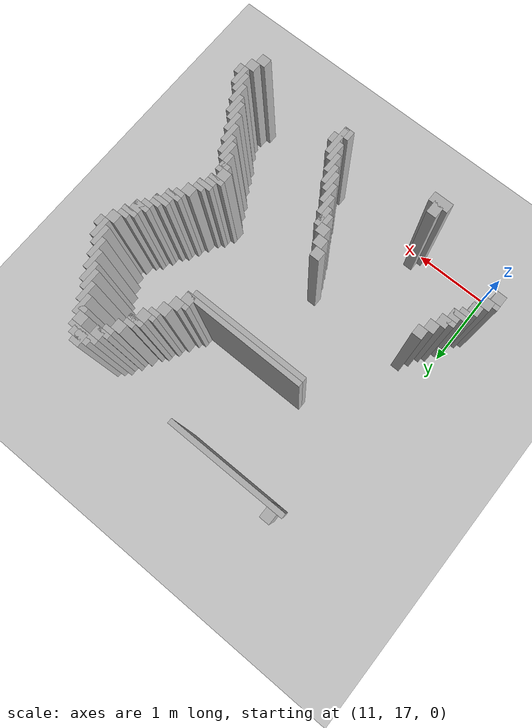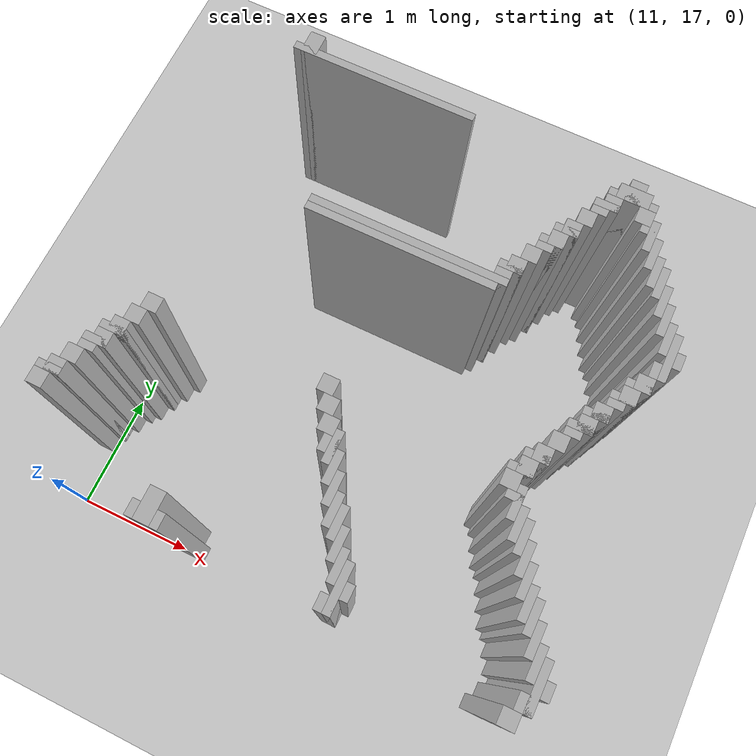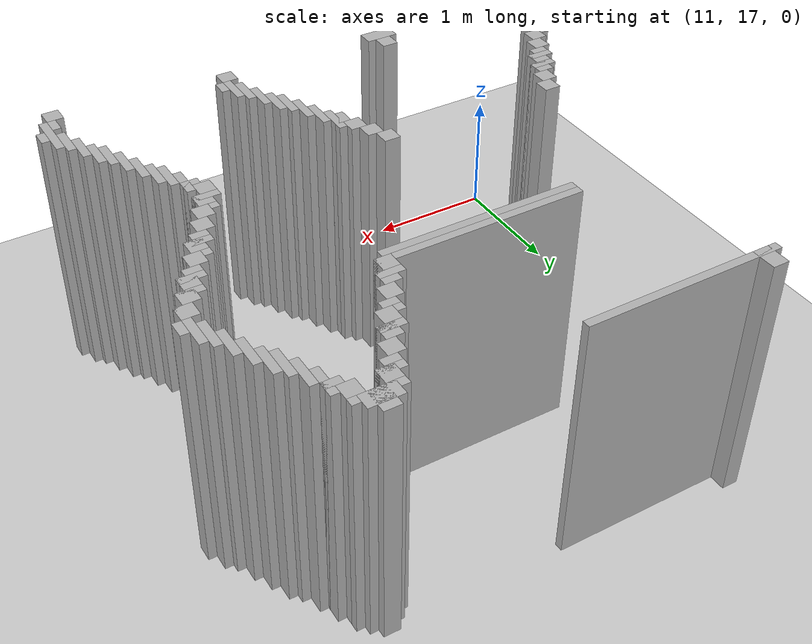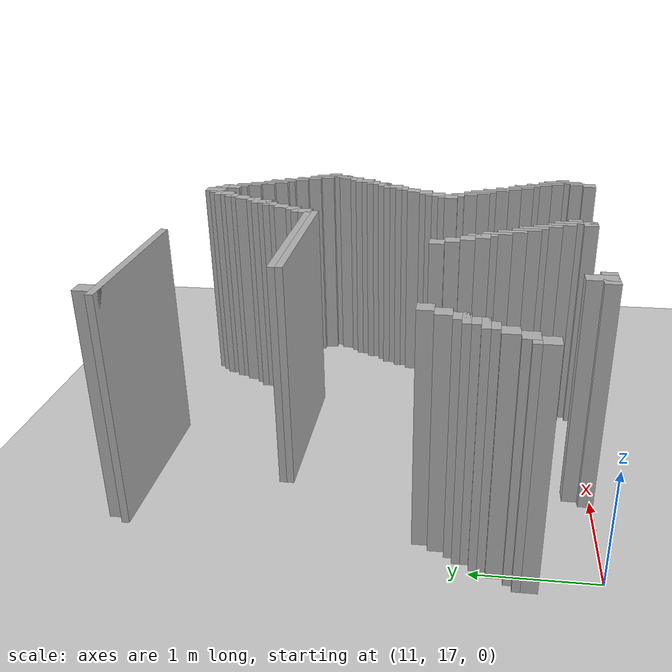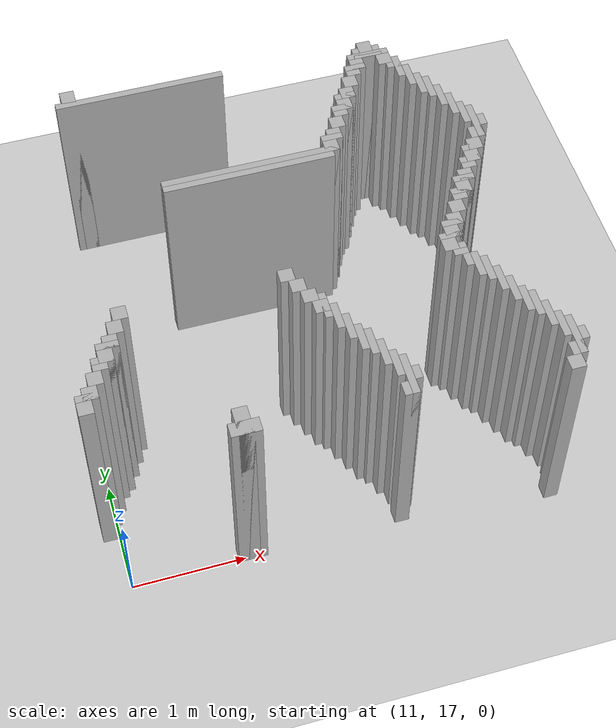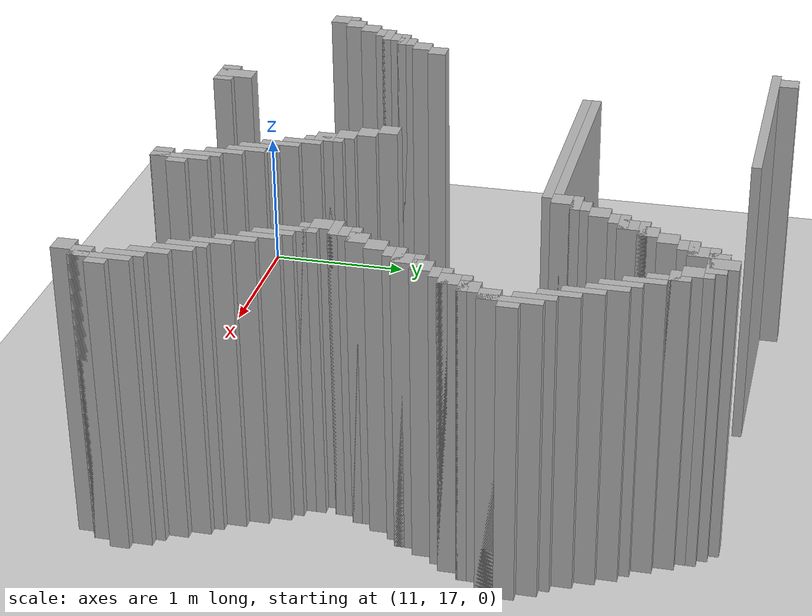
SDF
<sdf version="1.6">
 <world name="slam_world">
  <model name="ground_plane">
   <static>true</static>
   <link name="link">
    <collision name="collision">
     <geometry><plane><normal>0 0 1</normal><size>100 100</size></plane></geometry>
    </collision>
    <visual name="visual">
     <geometry><plane><normal>0 0 1</normal><size>100 100</size></plane></geometry>
     <material>
      <ambient>0.8 0.8 0.8 1</ambient>
      <diffuse>0.8 0.8 0.8 1</diffuse>
      <specular>0.8 0.8 0.8 1</specular>
     </material>
    </visual>
   </link>
  </model>
  <model name="wall_331">
   <static>true</static>
   <pose>11.425531914893616 20.840425531914892 1.0 0 0 0</pose>
   <link name="link">
    <collision name="collision">
     <geometry><box><size>0.1276595744680851 0.19148936170212766 2.0</size></box></geometry>
    </collision>
    <visual name="visual">
     <geometry><box><size>0.1276595744680851 0.19148936170212766 2.0</size></box></geometry>
     <material><ambient>0.5 0.5 0.5 1</ambient><diffuse>0.7 0.7 0.7 1</diffuse></material>
    </visual>
   </link>
  </model>
  <model name="wall_342">
   <static>true</static>
   <pose>12.063829787234042 20.77659574468085 1.0 0 0 0</pose>
   <link name="link">
    <collision name="collision">
     <geometry><box><size>1.5319148936170213 0.06382978723404255 2.0</size></box></geometry>
    </collision>
    <visual name="visual">
     <geometry><box><size>1.5319148936170213 0.06382978723404255 2.0</size></box></geometry>
     <material><ambient>0.5 0.5 0.5 1</ambient><diffuse>0.7 0.7 0.7 1</diffuse></material>
    </visual>
   </link>
  </model>
  <model name="wall_343">
   <static>true</static>
   <pose>14.170212765957446 20.712765957446805 1.0 0 0 0</pose>
   <link name="link">
    <collision name="collision">
     <geometry><box><size>0.1276595744680851 0.19148936170212766 2.0</size></box></geometry>
    </collision>
    <visual name="visual">
     <geometry><box><size>0.1276595744680851 0.19148936170212766 2.0</size></box></geometry>
     <material><ambient>0.5 0.5 0.5 1</ambient><diffuse>0.7 0.7 0.7 1</diffuse></material>
    </visual>
   </link>
  </model>
  <model name="wall_350">
   <static>true</static>
   <pose>14.170212765957446 20.680851063829785 1.0 0 0 0</pose>
   <link name="link">
    <collision name="collision">
     <geometry><box><size>0.2553191489361702 0.1276595744680851 2.0</size></box></geometry>
    </collision>
    <visual name="visual">
     <geometry><box><size>0.2553191489361702 0.1276595744680851 2.0</size></box></geometry>
     <material><ambient>0.5 0.5 0.5 1</ambient><diffuse>0.7 0.7 0.7 1</diffuse></material>
    </visual>
   </link>
  </model>
  <model name="wall_358">
   <static>true</static>
   <pose>14.170212765957446 20.648936170212764 1.0 0 0 0</pose>
   <link name="link">
    <collision name="collision">
     <geometry><box><size>0.3829787234042553 0.06382978723404255 2.0</size></box></geometry>
    </collision>
    <visual name="visual">
     <geometry><box><size>0.3829787234042553 0.06382978723404255 2.0</size></box></geometry>
     <material><ambient>0.5 0.5 0.5 1</ambient><diffuse>0.7 0.7 0.7 1</diffuse></material>
    </visual>
   </link>
  </model>
  <model name="wall_366">
   <static>true</static>
   <pose>14.042553191489361 20.5531914893617 1.0 0 0 0</pose>
   <link name="link">
    <collision name="collision">
     <geometry><box><size>0.1276595744680851 0.1276595744680851 2.0</size></box></geometry>
    </collision>
    <visual name="visual">
     <geometry><box><size>0.1276595744680851 0.1276595744680851 2.0</size></box></geometry>
     <material><ambient>0.5 0.5 0.5 1</ambient><diffuse>0.7 0.7 0.7 1</diffuse></material>
    </visual>
   </link>
  </model>
  <model name="wall_367">
   <static>true</static>
   <pose>14.297872340425531 20.5531914893617 1.0 0 0 0</pose>
   <link name="link">
    <collision name="collision">
     <geometry><box><size>0.1276595744680851 0.1276595744680851 2.0</size></box></geometry>
    </collision>
    <visual name="visual">
     <geometry><box><size>0.1276595744680851 0.1276595744680851 2.0</size></box></geometry>
     <material><ambient>0.5 0.5 0.5 1</ambient><diffuse>0.7 0.7 0.7 1</diffuse></material>
    </visual>
   </link>
  </model>
  <model name="wall_375">
   <static>true</static>
   <pose>14.010638297872338 20.52127659574468 1.0 0 0 0</pose>
   <link name="link">
    <collision name="collision">
     <geometry><box><size>0.19148936170212766 0.06382978723404255 2.0</size></box></geometry>
    </collision>
    <visual name="visual">
     <geometry><box><size>0.19148936170212766 0.06382978723404255 2.0</size></box></geometry>
     <material><ambient>0.5 0.5 0.5 1</ambient><diffuse>0.7 0.7 0.7 1</diffuse></material>
    </visual>
   </link>
  </model>
  <model name="wall_376">
   <static>true</static>
   <pose>14.393617021276595 20.425531914893615 1.0 0 0 0</pose>
   <link name="link">
    <collision name="collision">
     <geometry><box><size>0.06382978723404255 0.2553191489361702 2.0</size></box></geometry>
    </collision>
    <visual name="visual">
     <geometry><box><size>0.06382978723404255 0.2553191489361702 2.0</size></box></geometry>
     <material><ambient>0.5 0.5 0.5 1</ambient><diffuse>0.7 0.7 0.7 1</diffuse></material>
    </visual>
   </link>
  </model>
  <model name="wall_378">
   <static>true</static>
   <pose>13.978723404255318 20.457446808510635 1.0 0 0 0</pose>
   <link name="link">
    <collision name="collision">
     <geometry><box><size>0.1276595744680851 0.06382978723404255 2.0</size></box></geometry>
    </collision>
    <visual name="visual">
     <geometry><box><size>0.1276595744680851 0.06382978723404255 2.0</size></box></geometry>
     <material><ambient>0.5 0.5 0.5 1</ambient><diffuse>0.7 0.7 0.7 1</diffuse></material>
    </visual>
   </link>
  </model>
  <model name="wall_379">
   <static>true</static>
   <pose>14.361702127659573 20.457446808510635 1.0 0 0 0</pose>
   <link name="link">
    <collision name="collision">
     <geometry><box><size>0.1276595744680851 0.06382978723404255 2.0</size></box></geometry>
    </collision>
    <visual name="visual">
     <geometry><box><size>0.1276595744680851 0.06382978723404255 2.0</size></box></geometry>
     <material><ambient>0.5 0.5 0.5 1</ambient><diffuse>0.7 0.7 0.7 1</diffuse></material>
    </visual>
   </link>
  </model>
  <model name="wall_387">
   <static>true</static>
   <pose>13.914893617021276 20.361702127659573 1.0 0 0 0</pose>
   <link name="link">
    <collision name="collision">
     <geometry><box><size>0.1276595744680851 0.1276595744680851 2.0</size></box></geometry>
    </collision>
    <visual name="visual">
     <geometry><box><size>0.1276595744680851 0.1276595744680851 2.0</size></box></geometry>
     <material><ambient>0.5 0.5 0.5 1</ambient><diffuse>0.7 0.7 0.7 1</diffuse></material>
    </visual>
   </link>
  </model>
  <model name="wall_388">
   <static>true</static>
   <pose>14.457446808510637 20.29787234042553 1.0 0 0 0</pose>
   <link name="link">
    <collision name="collision">
     <geometry><box><size>0.06382978723404255 0.2553191489361702 2.0</size></box></geometry>
    </collision>
    <visual name="visual">
     <geometry><box><size>0.06382978723404255 0.2553191489361702 2.0</size></box></geometry>
     <material><ambient>0.5 0.5 0.5 1</ambient><diffuse>0.7 0.7 0.7 1</diffuse></material>
    </visual>
   </link>
  </model>
  <model name="wall_396">
   <static>true</static>
   <pose>13.851063829787233 20.234042553191486 1.0 0 0 0</pose>
   <link name="link">
    <collision name="collision">
     <geometry><box><size>0.1276595744680851 0.1276595744680851 2.0</size></box></geometry>
    </collision>
    <visual name="visual">
     <geometry><box><size>0.1276595744680851 0.1276595744680851 2.0</size></box></geometry>
     <material><ambient>0.5 0.5 0.5 1</ambient><diffuse>0.7 0.7 0.7 1</diffuse></material>
    </visual>
   </link>
  </model>
  <model name="wall_397">
   <static>true</static>
   <pose>14.52127659574468 20.170212765957444 1.0 0 0 0</pose>
   <link name="link">
    <collision name="collision">
     <geometry><box><size>0.06382978723404255 0.2553191489361702 2.0</size></box></geometry>
    </collision>
    <visual name="visual">
     <geometry><box><size>0.06382978723404255 0.2553191489361702 2.0</size></box></geometry>
     <material><ambient>0.5 0.5 0.5 1</ambient><diffuse>0.7 0.7 0.7 1</diffuse></material>
    </visual>
   </link>
  </model>
  <model name="wall_405">
   <static>true</static>
   <pose>13.819148936170212 20.202127659574465 1.0 0 0 0</pose>
   <link name="link">
    <collision name="collision">
     <geometry><box><size>0.19148936170212766 0.06382978723404255 2.0</size></box></geometry>
    </collision>
    <visual name="visual">
     <geometry><box><size>0.19148936170212766 0.06382978723404255 2.0</size></box></geometry>
     <material><ambient>0.5 0.5 0.5 1</ambient><diffuse>0.7 0.7 0.7 1</diffuse></material>
    </visual>
   </link>
  </model>
  <model name="wall_406">
   <static>true</static>
   <pose>14.585106382978722 20.106382978723403 1.0 0 0 0</pose>
   <link name="link">
    <collision name="collision">
     <geometry><box><size>0.06382978723404255 0.2553191489361702 2.0</size></box></geometry>
    </collision>
    <visual name="visual">
     <geometry><box><size>0.06382978723404255 0.2553191489361702 2.0</size></box></geometry>
     <material><ambient>0.5 0.5 0.5 1</ambient><diffuse>0.7 0.7 0.7 1</diffuse></material>
    </visual>
   </link>
  </model>
  <model name="wall_408">
   <static>true</static>
   <pose>13.787234042553191 20.106382978723403 1.0 0 0 0</pose>
   <link name="link">
    <collision name="collision">
     <geometry><box><size>0.1276595744680851 0.1276595744680851 2.0</size></box></geometry>
    </collision>
    <visual name="visual">
     <geometry><box><size>0.1276595744680851 0.1276595744680851 2.0</size></box></geometry>
     <material><ambient>0.5 0.5 0.5 1</ambient><diffuse>0.7 0.7 0.7 1</diffuse></material>
    </visual>
   </link>
  </model>
  <model name="wall_416">
   <static>true</static>
   <pose>13.755319148936168 20.074468085106382 1.0 0 0 0</pose>
   <link name="link">
    <collision name="collision">
     <geometry><box><size>0.19148936170212766 0.06382978723404255 2.0</size></box></geometry>
    </collision>
    <visual name="visual">
     <geometry><box><size>0.19148936170212766 0.06382978723404255 2.0</size></box></geometry>
     <material><ambient>0.5 0.5 0.5 1</ambient><diffuse>0.7 0.7 0.7 1</diffuse></material>
    </visual>
   </link>
  </model>
  <model name="wall_417">
   <static>true</static>
   <pose>14.648936170212766 19.978723404255316 1.0 0 0 0</pose>
   <link name="link">
    <collision name="collision">
     <geometry><box><size>0.06382978723404255 0.2553191489361702 2.0</size></box></geometry>
    </collision>
    <visual name="visual">
     <geometry><box><size>0.06382978723404255 0.2553191489361702 2.0</size></box></geometry>
     <material><ambient>0.5 0.5 0.5 1</ambient><diffuse>0.7 0.7 0.7 1</diffuse></material>
    </visual>
   </link>
  </model>
  <model name="wall_419">
   <static>true</static>
   <pose>13.723404255319148 20.01063829787234 1.0 0 0 0</pose>
   <link name="link">
    <collision name="collision">
     <geometry><box><size>0.1276595744680851 0.06382978723404255 2.0</size></box></geometry>
    </collision>
    <visual name="visual">
     <geometry><box><size>0.1276595744680851 0.06382978723404255 2.0</size></box></geometry>
     <material><ambient>0.5 0.5 0.5 1</ambient><diffuse>0.7 0.7 0.7 1</diffuse></material>
    </visual>
   </link>
  </model>
  <model name="wall_427">
   <static>true</static>
   <pose>13.659574468085106 19.914893617021274 1.0 0 0 0</pose>
   <link name="link">
    <collision name="collision">
     <geometry><box><size>0.1276595744680851 0.1276595744680851 2.0</size></box></geometry>
    </collision>
    <visual name="visual">
     <geometry><box><size>0.1276595744680851 0.1276595744680851 2.0</size></box></geometry>
     <material><ambient>0.5 0.5 0.5 1</ambient><diffuse>0.7 0.7 0.7 1</diffuse></material>
    </visual>
   </link>
  </model>
  <model name="wall_428">
   <static>true</static>
   <pose>14.712765957446807 19.851063829787233 1.0 0 0 0</pose>
   <link name="link">
    <collision name="collision">
     <geometry><box><size>0.06382978723404255 0.2553191489361702 2.0</size></box></geometry>
    </collision>
    <visual name="visual">
     <geometry><box><size>0.06382978723404255 0.2553191489361702 2.0</size></box></geometry>
     <material><ambient>0.5 0.5 0.5 1</ambient><diffuse>0.7 0.7 0.7 1</diffuse></material>
    </visual>
   </link>
  </model>
  <model name="wall_436">
   <static>true</static>
   <pose>13.595744680851062 19.78723404255319 1.0 0 0 0</pose>
   <link name="link">
    <collision name="collision">
     <geometry><box><size>0.1276595744680851 0.1276595744680851 2.0</size></box></geometry>
    </collision>
    <visual name="visual">
     <geometry><box><size>0.1276595744680851 0.1276595744680851 2.0</size></box></geometry>
     <material><ambient>0.5 0.5 0.5 1</ambient><diffuse>0.7 0.7 0.7 1</diffuse></material>
    </visual>
   </link>
  </model>
  <model name="wall_437">
   <static>true</static>
   <pose>14.77659574468085 19.723404255319146 1.0 0 0 0</pose>
   <link name="link">
    <collision name="collision">
     <geometry><box><size>0.06382978723404255 0.2553191489361702 2.0</size></box></geometry>
    </collision>
    <visual name="visual">
     <geometry><box><size>0.06382978723404255 0.2553191489361702 2.0</size></box></geometry>
     <material><ambient>0.5 0.5 0.5 1</ambient><diffuse>0.7 0.7 0.7 1</diffuse></material>
    </visual>
   </link>
  </model>
  <model name="wall_445">
   <static>true</static>
   <pose>13.563829787234042 19.75531914893617 1.0 0 0 0</pose>
   <link name="link">
    <collision name="collision">
     <geometry><box><size>0.19148936170212766 0.06382978723404255 2.0</size></box></geometry>
    </collision>
    <visual name="visual">
     <geometry><box><size>0.19148936170212766 0.06382978723404255 2.0</size></box></geometry>
     <material><ambient>0.5 0.5 0.5 1</ambient><diffuse>0.7 0.7 0.7 1</diffuse></material>
    </visual>
   </link>
  </model>
  <model name="wall_446">
   <static>true</static>
   <pose>14.840425531914892 19.595744680851062 1.0 0 0 0</pose>
   <link name="link">
    <collision name="collision">
     <geometry><box><size>0.06382978723404255 0.3829787234042553 2.0</size></box></geometry>
    </collision>
    <visual name="visual">
     <geometry><box><size>0.06382978723404255 0.3829787234042553 2.0</size></box></geometry>
     <material><ambient>0.5 0.5 0.5 1</ambient><diffuse>0.7 0.7 0.7 1</diffuse></material>
    </visual>
   </link>
  </model>
  <model name="wall_448">
   <static>true</static>
   <pose>13.53191489361702 19.659574468085104 1.0 0 0 0</pose>
   <link name="link">
    <collision name="collision">
     <geometry><box><size>0.1276595744680851 0.1276595744680851 2.0</size></box></geometry>
    </collision>
    <visual name="visual">
     <geometry><box><size>0.1276595744680851 0.1276595744680851 2.0</size></box></geometry>
     <material><ambient>0.5 0.5 0.5 1</ambient><diffuse>0.7 0.7 0.7 1</diffuse></material>
    </visual>
   </link>
  </model>
  <model name="wall_456">
   <static>true</static>
   <pose>12.797872340425531 19.627659574468083 1.0 0 0 0</pose>
   <link name="link">
    <collision name="collision">
     <geometry><box><size>1.5957446808510638 0.06382978723404255 2.0</size></box></geometry>
    </collision>
    <visual name="visual">
     <geometry><box><size>1.5957446808510638 0.06382978723404255 2.0</size></box></geometry>
     <material><ambient>0.5 0.5 0.5 1</ambient><diffuse>0.7 0.7 0.7 1</diffuse></material>
    </visual>
   </link>
  </model>
  <model name="wall_457">
   <static>true</static>
   <pose>14.904255319148936 19.595744680851062 1.0 0 0 0</pose>
   <link name="link">
    <collision name="collision">
     <geometry><box><size>0.06382978723404255 0.1276595744680851 2.0</size></box></geometry>
    </collision>
    <visual name="visual">
     <geometry><box><size>0.06382978723404255 0.1276595744680851 2.0</size></box></geometry>
     <material><ambient>0.5 0.5 0.5 1</ambient><diffuse>0.7 0.7 0.7 1</diffuse></material>
    </visual>
   </link>
  </model>
  <model name="wall_459">
   <static>true</static>
   <pose>12.76595744680851 19.56382978723404 1.0 0 0 0</pose>
   <link name="link">
    <collision name="collision">
     <geometry><box><size>1.5319148936170213 0.06382978723404255 2.0</size></box></geometry>
    </collision>
    <visual name="visual">
     <geometry><box><size>1.5319148936170213 0.06382978723404255 2.0</size></box></geometry>
     <material><ambient>0.5 0.5 0.5 1</ambient><diffuse>0.7 0.7 0.7 1</diffuse></material>
    </visual>
   </link>
  </model>
  <model name="wall_465">
   <static>true</static>
   <pose>14.808510638297872 19.468085106382976 1.0 0 0 0</pose>
   <link name="link">
    <collision name="collision">
     <geometry><box><size>0.1276595744680851 0.1276595744680851 2.0</size></box></geometry>
    </collision>
    <visual name="visual">
     <geometry><box><size>0.1276595744680851 0.1276595744680851 2.0</size></box></geometry>
     <material><ambient>0.5 0.5 0.5 1</ambient><diffuse>0.7 0.7 0.7 1</diffuse></material>
    </visual>
   </link>
  </model>
  <model name="wall_472">
   <static>true</static>
   <pose>14.744680851063828 19.340425531914892 1.0 0 0 0</pose>
   <link name="link">
    <collision name="collision">
     <geometry><box><size>0.1276595744680851 0.1276595744680851 2.0</size></box></geometry>
    </collision>
    <visual name="visual">
     <geometry><box><size>0.1276595744680851 0.1276595744680851 2.0</size></box></geometry>
     <material><ambient>0.5 0.5 0.5 1</ambient><diffuse>0.7 0.7 0.7 1</diffuse></material>
    </visual>
   </link>
  </model>
  <model name="wall_479">
   <static>true</static>
   <pose>14.712765957446807 19.30851063829787 1.0 0 0 0</pose>
   <link name="link">
    <collision name="collision">
     <geometry><box><size>0.19148936170212766 0.06382978723404255 2.0</size></box></geometry>
    </collision>
    <visual name="visual">
     <geometry><box><size>0.19148936170212766 0.06382978723404255 2.0</size></box></geometry>
     <material><ambient>0.5 0.5 0.5 1</ambient><diffuse>0.7 0.7 0.7 1</diffuse></material>
    </visual>
   </link>
  </model>
  <model name="wall_486">
   <static>true</static>
   <pose>14.680851063829786 19.212765957446805 1.0 0 0 0</pose>
   <link name="link">
    <collision name="collision">
     <geometry><box><size>0.1276595744680851 0.1276595744680851 2.0</size></box></geometry>
    </collision>
    <visual name="visual">
     <geometry><box><size>0.1276595744680851 0.1276595744680851 2.0</size></box></geometry>
     <material><ambient>0.5 0.5 0.5 1</ambient><diffuse>0.7 0.7 0.7 1</diffuse></material>
    </visual>
   </link>
  </model>
  <model name="wall_493">
   <static>true</static>
   <pose>14.648936170212766 19.180851063829785 1.0 0 0 0</pose>
   <link name="link">
    <collision name="collision">
     <geometry><box><size>0.19148936170212766 0.06382978723404255 2.0</size></box></geometry>
    </collision>
    <visual name="visual">
     <geometry><box><size>0.19148936170212766 0.06382978723404255 2.0</size></box></geometry>
     <material><ambient>0.5 0.5 0.5 1</ambient><diffuse>0.7 0.7 0.7 1</diffuse></material>
    </visual>
   </link>
  </model>
  <model name="wall_499">
   <static>true</static>
   <pose>14.617021276595743 19.117021276595743 1.0 0 0 0</pose>
   <link name="link">
    <collision name="collision">
     <geometry><box><size>0.1276595744680851 0.06382978723404255 2.0</size></box></geometry>
    </collision>
    <visual name="visual">
     <geometry><box><size>0.1276595744680851 0.06382978723404255 2.0</size></box></geometry>
     <material><ambient>0.5 0.5 0.5 1</ambient><diffuse>0.7 0.7 0.7 1</diffuse></material>
    </visual>
   </link>
  </model>
  <model name="wall_506">
   <static>true</static>
   <pose>14.553191489361701 19.02127659574468 1.0 0 0 0</pose>
   <link name="link">
    <collision name="collision">
     <geometry><box><size>0.1276595744680851 0.1276595744680851 2.0</size></box></geometry>
    </collision>
    <visual name="visual">
     <geometry><box><size>0.1276595744680851 0.1276595744680851 2.0</size></box></geometry>
     <material><ambient>0.5 0.5 0.5 1</ambient><diffuse>0.7 0.7 0.7 1</diffuse></material>
    </visual>
   </link>
  </model>
  <model name="wall_513">
   <static>true</static>
   <pose>14.52127659574468 18.98936170212766 1.0 0 0 0</pose>
   <link name="link">
    <collision name="collision">
     <geometry><box><size>0.19148936170212766 0.06382978723404255 2.0</size></box></geometry>
    </collision>
    <visual name="visual">
     <geometry><box><size>0.19148936170212766 0.06382978723404255 2.0</size></box></geometry>
     <material><ambient>0.5 0.5 0.5 1</ambient><diffuse>0.7 0.7 0.7 1</diffuse></material>
    </visual>
   </link>
  </model>
  <model name="wall_519">
   <static>true</static>
   <pose>14.489361702127658 18.893617021276594 1.0 0 0 0</pose>
   <link name="link">
    <collision name="collision">
     <geometry><box><size>0.1276595744680851 0.1276595744680851 2.0</size></box></geometry>
    </collision>
    <visual name="visual">
     <geometry><box><size>0.1276595744680851 0.1276595744680851 2.0</size></box></geometry>
     <material><ambient>0.5 0.5 0.5 1</ambient><diffuse>0.7 0.7 0.7 1</diffuse></material>
    </visual>
   </link>
  </model>
  <model name="wall_526">
   <static>true</static>
   <pose>14.457446808510637 18.861702127659573 1.0 0 0 0</pose>
   <link name="link">
    <collision name="collision">
     <geometry><box><size>0.19148936170212766 0.06382978723404255 2.0</size></box></geometry>
    </collision>
    <visual name="visual">
     <geometry><box><size>0.19148936170212766 0.06382978723404255 2.0</size></box></geometry>
     <material><ambient>0.5 0.5 0.5 1</ambient><diffuse>0.7 0.7 0.7 1</diffuse></material>
    </visual>
   </link>
  </model>
  <model name="wall_532">
   <static>true</static>
   <pose>14.425531914893616 18.79787234042553 1.0 0 0 0</pose>
   <link name="link">
    <collision name="collision">
     <geometry><box><size>0.1276595744680851 0.06382978723404255 2.0</size></box></geometry>
    </collision>
    <visual name="visual">
     <geometry><box><size>0.1276595744680851 0.06382978723404255 2.0</size></box></geometry>
     <material><ambient>0.5 0.5 0.5 1</ambient><diffuse>0.7 0.7 0.7 1</diffuse></material>
    </visual>
   </link>
  </model>
  <model name="wall_539">
   <static>true</static>
   <pose>14.361702127659573 18.702127659574465 1.0 0 0 0</pose>
   <link name="link">
    <collision name="collision">
     <geometry><box><size>0.1276595744680851 0.1276595744680851 2.0</size></box></geometry>
    </collision>
    <visual name="visual">
     <geometry><box><size>0.1276595744680851 0.1276595744680851 2.0</size></box></geometry>
     <material><ambient>0.5 0.5 0.5 1</ambient><diffuse>0.7 0.7 0.7 1</diffuse></material>
    </visual>
   </link>
  </model>
  <model name="wall_546">
   <static>true</static>
   <pose>14.297872340425531 18.574468085106382 1.0 0 0 0</pose>
   <link name="link">
    <collision name="collision">
     <geometry><box><size>0.1276595744680851 0.1276595744680851 2.0</size></box></geometry>
    </collision>
    <visual name="visual">
     <geometry><box><size>0.1276595744680851 0.1276595744680851 2.0</size></box></geometry>
     <material><ambient>0.5 0.5 0.5 1</ambient><diffuse>0.7 0.7 0.7 1</diffuse></material>
    </visual>
   </link>
  </model>
  <model name="wall_553">
   <static>true</static>
   <pose>14.265957446808509 18.54255319148936 1.0 0 0 0</pose>
   <link name="link">
    <collision name="collision">
     <geometry><box><size>0.19148936170212766 0.06382978723404255 2.0</size></box></geometry>
    </collision>
    <visual name="visual">
     <geometry><box><size>0.19148936170212766 0.06382978723404255 2.0</size></box></geometry>
     <material><ambient>0.5 0.5 0.5 1</ambient><diffuse>0.7 0.7 0.7 1</diffuse></material>
    </visual>
   </link>
  </model>
  <model name="wall_559">
   <static>true</static>
   <pose>14.234042553191488 18.446808510638295 1.0 0 0 0</pose>
   <link name="link">
    <collision name="collision">
     <geometry><box><size>0.1276595744680851 0.1276595744680851 2.0</size></box></geometry>
    </collision>
    <visual name="visual">
     <geometry><box><size>0.1276595744680851 0.1276595744680851 2.0</size></box></geometry>
     <material><ambient>0.5 0.5 0.5 1</ambient><diffuse>0.7 0.7 0.7 1</diffuse></material>
    </visual>
   </link>
  </model>
  <model name="wall_567">
   <static>true</static>
   <pose>11.361702127659573 18.382978723404253 1.0 0 0 0</pose>
   <link name="link">
    <collision name="collision">
     <geometry><box><size>0.1276595744680851 0.1276595744680851 2.0</size></box></geometry>
    </collision>
    <visual name="visual">
     <geometry><box><size>0.1276595744680851 0.1276595744680851 2.0</size></box></geometry>
     <material><ambient>0.5 0.5 0.5 1</ambient><diffuse>0.7 0.7 0.7 1</diffuse></material>
    </visual>
   </link>
  </model>
  <model name="wall_568">
   <static>true</static>
   <pose>12.76595744680851 18.382978723404253 1.0 0 0 0</pose>
   <link name="link">
    <collision name="collision">
     <geometry><box><size>0.1276595744680851 0.1276595744680851 2.0</size></box></geometry>
    </collision>
    <visual name="visual">
     <geometry><box><size>0.1276595744680851 0.1276595744680851 2.0</size></box></geometry>
     <material><ambient>0.5 0.5 0.5 1</ambient><diffuse>0.7 0.7 0.7 1</diffuse></material>
    </visual>
   </link>
  </model>
  <model name="wall_569">
   <static>true</static>
   <pose>14.202127659574467 18.414893617021274 1.0 0 0 0</pose>
   <link name="link">
    <collision name="collision">
     <geometry><box><size>0.19148936170212766 0.06382978723404255 2.0</size></box></geometry>
    </collision>
    <visual name="visual">
     <geometry><box><size>0.19148936170212766 0.06382978723404255 2.0</size></box></geometry>
     <material><ambient>0.5 0.5 0.5 1</ambient><diffuse>0.7 0.7 0.7 1</diffuse></material>
    </visual>
   </link>
  </model>
  <model name="wall_575">
   <static>true</static>
   <pose>14.170212765957446 18.319148936170212 1.0 0 0 0</pose>
   <link name="link">
    <collision name="collision">
     <geometry><box><size>0.1276595744680851 0.1276595744680851 2.0</size></box></geometry>
    </collision>
    <visual name="visual">
     <geometry><box><size>0.1276595744680851 0.1276595744680851 2.0</size></box></geometry>
     <material><ambient>0.5 0.5 0.5 1</ambient><diffuse>0.7 0.7 0.7 1</diffuse></material>
    </visual>
   </link>
  </model>
  <model name="wall_580">
   <static>true</static>
   <pose>11.297872340425531 18.25531914893617 1.0 0 0 0</pose>
   <link name="link">
    <collision name="collision">
     <geometry><box><size>0.1276595744680851 0.1276595744680851 2.0</size></box></geometry>
    </collision>
    <visual name="visual">
     <geometry><box><size>0.1276595744680851 0.1276595744680851 2.0</size></box></geometry>
     <material><ambient>0.5 0.5 0.5 1</ambient><diffuse>0.7 0.7 0.7 1</diffuse></material>
    </visual>
   </link>
  </model>
  <model name="wall_581">
   <static>true</static>
   <pose>12.829787234042552 18.25531914893617 1.0 0 0 0</pose>
   <link name="link">
    <collision name="collision">
     <geometry><box><size>0.1276595744680851 0.1276595744680851 2.0</size></box></geometry>
    </collision>
    <visual name="visual">
     <geometry><box><size>0.1276595744680851 0.1276595744680851 2.0</size></box></geometry>
     <material><ambient>0.5 0.5 0.5 1</ambient><diffuse>0.7 0.7 0.7 1</diffuse></material>
    </visual>
   </link>
  </model>
  <model name="wall_582">
   <static>true</static>
   <pose>14.265957446808509 18.191489361702125 1.0 0 0 0</pose>
   <link name="link">
    <collision name="collision">
     <geometry><box><size>0.06382978723404255 0.2553191489361702 2.0</size></box></geometry>
    </collision>
    <visual name="visual">
     <geometry><box><size>0.06382978723404255 0.2553191489361702 2.0</size></box></geometry>
     <material><ambient>0.5 0.5 0.5 1</ambient><diffuse>0.7 0.7 0.7 1</diffuse></material>
    </visual>
   </link>
  </model>
  <model name="wall_586">
   <static>true</static>
   <pose>14.234042553191488 18.223404255319146 1.0 0 0 0</pose>
   <link name="link">
    <collision name="collision">
     <geometry><box><size>0.1276595744680851 0.06382978723404255 2.0</size></box></geometry>
    </collision>
    <visual name="visual">
     <geometry><box><size>0.1276595744680851 0.06382978723404255 2.0</size></box></geometry>
     <material><ambient>0.5 0.5 0.5 1</ambient><diffuse>0.7 0.7 0.7 1</diffuse></material>
    </visual>
   </link>
  </model>
  <model name="wall_591">
   <static>true</static>
   <pose>11.234042553191488 18.127659574468083 1.0 0 0 0</pose>
   <link name="link">
    <collision name="collision">
     <geometry><box><size>0.1276595744680851 0.1276595744680851 2.0</size></box></geometry>
    </collision>
    <visual name="visual">
     <geometry><box><size>0.1276595744680851 0.1276595744680851 2.0</size></box></geometry>
     <material><ambient>0.5 0.5 0.5 1</ambient><diffuse>0.7 0.7 0.7 1</diffuse></material>
    </visual>
   </link>
  </model>
  <model name="wall_592">
   <static>true</static>
   <pose>12.893617021276595 18.127659574468083 1.0 0 0 0</pose>
   <link name="link">
    <collision name="collision">
     <geometry><box><size>0.1276595744680851 0.1276595744680851 2.0</size></box></geometry>
    </collision>
    <visual name="visual">
     <geometry><box><size>0.1276595744680851 0.1276595744680851 2.0</size></box></geometry>
     <material><ambient>0.5 0.5 0.5 1</ambient><diffuse>0.7 0.7 0.7 1</diffuse></material>
    </visual>
   </link>
  </model>
  <model name="wall_593">
   <static>true</static>
   <pose>14.329787234042552 18.06382978723404 1.0 0 0 0</pose>
   <link name="link">
    <collision name="collision">
     <geometry><box><size>0.06382978723404255 0.2553191489361702 2.0</size></box></geometry>
    </collision>
    <visual name="visual">
     <geometry><box><size>0.06382978723404255 0.2553191489361702 2.0</size></box></geometry>
     <material><ambient>0.5 0.5 0.5 1</ambient><diffuse>0.7 0.7 0.7 1</diffuse></material>
    </visual>
   </link>
  </model>
  <model name="wall_598">
   <static>true</static>
   <pose>11.202127659574467 18.095744680851062 1.0 0 0 0</pose>
   <link name="link">
    <collision name="collision">
     <geometry><box><size>0.19148936170212766 0.06382978723404255 2.0</size></box></geometry>
    </collision>
    <visual name="visual">
     <geometry><box><size>0.19148936170212766 0.06382978723404255 2.0</size></box></geometry>
     <material><ambient>0.5 0.5 0.5 1</ambient><diffuse>0.7 0.7 0.7 1</diffuse></material>
    </visual>
   </link>
  </model>
  <model name="wall_599">
   <static>true</static>
   <pose>12.989361702127658 18.0 1.0 0 0 0</pose>
   <link name="link">
    <collision name="collision">
     <geometry><box><size>0.06382978723404255 0.2553191489361702 2.0</size></box></geometry>
    </collision>
    <visual name="visual">
     <geometry><box><size>0.06382978723404255 0.2553191489361702 2.0</size></box></geometry>
     <material><ambient>0.5 0.5 0.5 1</ambient><diffuse>0.7 0.7 0.7 1</diffuse></material>
    </visual>
   </link>
  </model>
  <model name="wall_600">
   <static>true</static>
   <pose>14.393617021276595 18.0 1.0 0 0 0</pose>
   <link name="link">
    <collision name="collision">
     <geometry><box><size>0.06382978723404255 0.2553191489361702 2.0</size></box></geometry>
    </collision>
    <visual name="visual">
     <geometry><box><size>0.06382978723404255 0.2553191489361702 2.0</size></box></geometry>
     <material><ambient>0.5 0.5 0.5 1</ambient><diffuse>0.7 0.7 0.7 1</diffuse></material>
    </visual>
   </link>
  </model>
  <model name="wall_604">
   <static>true</static>
   <pose>11.170212765957446 18.0 1.0 0 0 0</pose>
   <link name="link">
    <collision name="collision">
     <geometry><box><size>0.1276595744680851 0.1276595744680851 2.0</size></box></geometry>
    </collision>
    <visual name="visual">
     <geometry><box><size>0.1276595744680851 0.1276595744680851 2.0</size></box></geometry>
     <material><ambient>0.5 0.5 0.5 1</ambient><diffuse>0.7 0.7 0.7 1</diffuse></material>
    </visual>
   </link>
  </model>
  <model name="wall_605">
   <static>true</static>
   <pose>12.957446808510637 18.0 1.0 0 0 0</pose>
   <link name="link">
    <collision name="collision">
     <geometry><box><size>0.1276595744680851 0.1276595744680851 2.0</size></box></geometry>
    </collision>
    <visual name="visual">
     <geometry><box><size>0.1276595744680851 0.1276595744680851 2.0</size></box></geometry>
     <material><ambient>0.5 0.5 0.5 1</ambient><diffuse>0.7 0.7 0.7 1</diffuse></material>
    </visual>
   </link>
  </model>
  <model name="wall_610">
   <static>true</static>
   <pose>11.138297872340425 17.968085106382976 1.0 0 0 0</pose>
   <link name="link">
    <collision name="collision">
     <geometry><box><size>0.19148936170212766 0.06382978723404255 2.0</size></box></geometry>
    </collision>
    <visual name="visual">
     <geometry><box><size>0.19148936170212766 0.06382978723404255 2.0</size></box></geometry>
     <material><ambient>0.5 0.5 0.5 1</ambient><diffuse>0.7 0.7 0.7 1</diffuse></material>
    </visual>
   </link>
  </model>
  <model name="wall_611">
   <static>true</static>
   <pose>13.053191489361701 17.872340425531913 1.0 0 0 0</pose>
   <link name="link">
    <collision name="collision">
     <geometry><box><size>0.06382978723404255 0.2553191489361702 2.0</size></box></geometry>
    </collision>
    <visual name="visual">
     <geometry><box><size>0.06382978723404255 0.2553191489361702 2.0</size></box></geometry>
     <material><ambient>0.5 0.5 0.5 1</ambient><diffuse>0.7 0.7 0.7 1</diffuse></material>
    </visual>
   </link>
  </model>
  <model name="wall_612">
   <static>true</static>
   <pose>14.457446808510637 17.872340425531913 1.0 0 0 0</pose>
   <link name="link">
    <collision name="collision">
     <geometry><box><size>0.06382978723404255 0.2553191489361702 2.0</size></box></geometry>
    </collision>
    <visual name="visual">
     <geometry><box><size>0.06382978723404255 0.2553191489361702 2.0</size></box></geometry>
     <material><ambient>0.5 0.5 0.5 1</ambient><diffuse>0.7 0.7 0.7 1</diffuse></material>
    </visual>
   </link>
  </model>
  <model name="wall_615">
   <static>true</static>
   <pose>11.106382978723403 17.904255319148934 1.0 0 0 0</pose>
   <link name="link">
    <collision name="collision">
     <geometry><box><size>0.1276595744680851 0.06382978723404255 2.0</size></box></geometry>
    </collision>
    <visual name="visual">
     <geometry><box><size>0.1276595744680851 0.06382978723404255 2.0</size></box></geometry>
     <material><ambient>0.5 0.5 0.5 1</ambient><diffuse>0.7 0.7 0.7 1</diffuse></material>
    </visual>
   </link>
  </model>
  <model name="wall_620">
   <static>true</static>
   <pose>11.042553191489361 17.80851063829787 1.0 0 0 0</pose>
   <link name="link">
    <collision name="collision">
     <geometry><box><size>0.1276595744680851 0.1276595744680851 2.0</size></box></geometry>
    </collision>
    <visual name="visual">
     <geometry><box><size>0.1276595744680851 0.1276595744680851 2.0</size></box></geometry>
     <material><ambient>0.5 0.5 0.5 1</ambient><diffuse>0.7 0.7 0.7 1</diffuse></material>
    </visual>
   </link>
  </model>
  <model name="wall_621">
   <static>true</static>
   <pose>13.117021276595743 17.74468085106383 1.0 0 0 0</pose>
   <link name="link">
    <collision name="collision">
     <geometry><box><size>0.06382978723404255 0.2553191489361702 2.0</size></box></geometry>
    </collision>
    <visual name="visual">
     <geometry><box><size>0.06382978723404255 0.2553191489361702 2.0</size></box></geometry>
     <material><ambient>0.5 0.5 0.5 1</ambient><diffuse>0.7 0.7 0.7 1</diffuse></material>
    </visual>
   </link>
  </model>
  <model name="wall_622">
   <static>true</static>
   <pose>14.52127659574468 17.74468085106383 1.0 0 0 0</pose>
   <link name="link">
    <collision name="collision">
     <geometry><box><size>0.06382978723404255 0.2553191489361702 2.0</size></box></geometry>
    </collision>
    <visual name="visual">
     <geometry><box><size>0.06382978723404255 0.2553191489361702 2.0</size></box></geometry>
     <material><ambient>0.5 0.5 0.5 1</ambient><diffuse>0.7 0.7 0.7 1</diffuse></material>
    </visual>
   </link>
  </model>
  <model name="wall_627">
   <static>true</static>
   <pose>10.978723404255318 17.680851063829785 1.0 0 0 0</pose>
   <link name="link">
    <collision name="collision">
     <geometry><box><size>0.1276595744680851 0.1276595744680851 2.0</size></box></geometry>
    </collision>
    <visual name="visual">
     <geometry><box><size>0.1276595744680851 0.1276595744680851 2.0</size></box></geometry>
     <material><ambient>0.5 0.5 0.5 1</ambient><diffuse>0.7 0.7 0.7 1</diffuse></material>
    </visual>
   </link>
  </model>
  <model name="wall_628">
   <static>true</static>
   <pose>13.180851063829786 17.617021276595743 1.0 0 0 0</pose>
   <link name="link">
    <collision name="collision">
     <geometry><box><size>0.06382978723404255 0.2553191489361702 2.0</size></box></geometry>
    </collision>
    <visual name="visual">
     <geometry><box><size>0.06382978723404255 0.2553191489361702 2.0</size></box></geometry>
     <material><ambient>0.5 0.5 0.5 1</ambient><diffuse>0.7 0.7 0.7 1</diffuse></material>
    </visual>
   </link>
  </model>
  <model name="wall_629">
   <static>true</static>
   <pose>14.585106382978722 17.617021276595743 1.0 0 0 0</pose>
   <link name="link">
    <collision name="collision">
     <geometry><box><size>0.06382978723404255 0.2553191489361702 2.0</size></box></geometry>
    </collision>
    <visual name="visual">
     <geometry><box><size>0.06382978723404255 0.2553191489361702 2.0</size></box></geometry>
     <material><ambient>0.5 0.5 0.5 1</ambient><diffuse>0.7 0.7 0.7 1</diffuse></material>
    </visual>
   </link>
  </model>
  <model name="wall_634">
   <static>true</static>
   <pose>10.946808510638297 17.648936170212764 1.0 0 0 0</pose>
   <link name="link">
    <collision name="collision">
     <geometry><box><size>0.19148936170212766 0.06382978723404255 2.0</size></box></geometry>
    </collision>
    <visual name="visual">
     <geometry><box><size>0.19148936170212766 0.06382978723404255 2.0</size></box></geometry>
     <material><ambient>0.5 0.5 0.5 1</ambient><diffuse>0.7 0.7 0.7 1</diffuse></material>
    </visual>
   </link>
  </model>
  <model name="wall_635">
   <static>true</static>
   <pose>13.244680851063828 17.5531914893617 1.0 0 0 0</pose>
   <link name="link">
    <collision name="collision">
     <geometry><box><size>0.06382978723404255 0.2553191489361702 2.0</size></box></geometry>
    </collision>
    <visual name="visual">
     <geometry><box><size>0.06382978723404255 0.2553191489361702 2.0</size></box></geometry>
     <material><ambient>0.5 0.5 0.5 1</ambient><diffuse>0.7 0.7 0.7 1</diffuse></material>
    </visual>
   </link>
  </model>
  <model name="wall_636">
   <static>true</static>
   <pose>14.648936170212766 17.5531914893617 1.0 0 0 0</pose>
   <link name="link">
    <collision name="collision">
     <geometry><box><size>0.06382978723404255 0.2553191489361702 2.0</size></box></geometry>
    </collision>
    <visual name="visual">
     <geometry><box><size>0.06382978723404255 0.2553191489361702 2.0</size></box></geometry>
     <material><ambient>0.5 0.5 0.5 1</ambient><diffuse>0.7 0.7 0.7 1</diffuse></material>
    </visual>
   </link>
  </model>
  <model name="wall_639">
   <static>true</static>
   <pose>10.914893617021276 17.5531914893617 1.0 0 0 0</pose>
   <link name="link">
    <collision name="collision">
     <geometry><box><size>0.1276595744680851 0.1276595744680851 2.0</size></box></geometry>
    </collision>
    <visual name="visual">
     <geometry><box><size>0.1276595744680851 0.1276595744680851 2.0</size></box></geometry>
     <material><ambient>0.5 0.5 0.5 1</ambient><diffuse>0.7 0.7 0.7 1</diffuse></material>
    </visual>
   </link>
  </model>
  <model name="wall_645">
   <static>true</static>
   <pose>13.308510638297872 17.425531914893615 1.0 0 0 0</pose>
   <link name="link">
    <collision name="collision">
     <geometry><box><size>0.06382978723404255 0.2553191489361702 2.0</size></box></geometry>
    </collision>
    <visual name="visual">
     <geometry><box><size>0.06382978723404255 0.2553191489361702 2.0</size></box></geometry>
     <material><ambient>0.5 0.5 0.5 1</ambient><diffuse>0.7 0.7 0.7 1</diffuse></material>
    </visual>
   </link>
  </model>
  <model name="wall_646">
   <static>true</static>
   <pose>14.712765957446807 17.425531914893615 1.0 0 0 0</pose>
   <link name="link">
    <collision name="collision">
     <geometry><box><size>0.06382978723404255 0.2553191489361702 2.0</size></box></geometry>
    </collision>
    <visual name="visual">
     <geometry><box><size>0.06382978723404255 0.2553191489361702 2.0</size></box></geometry>
     <material><ambient>0.5 0.5 0.5 1</ambient><diffuse>0.7 0.7 0.7 1</diffuse></material>
    </visual>
   </link>
  </model>
  <model name="wall_655">
   <static>true</static>
   <pose>13.372340425531913 17.29787234042553 1.0 0 0 0</pose>
   <link name="link">
    <collision name="collision">
     <geometry><box><size>0.06382978723404255 0.2553191489361702 2.0</size></box></geometry>
    </collision>
    <visual name="visual">
     <geometry><box><size>0.06382978723404255 0.2553191489361702 2.0</size></box></geometry>
     <material><ambient>0.5 0.5 0.5 1</ambient><diffuse>0.7 0.7 0.7 1</diffuse></material>
    </visual>
   </link>
  </model>
  <model name="wall_656">
   <static>true</static>
   <pose>14.77659574468085 17.29787234042553 1.0 0 0 0</pose>
   <link name="link">
    <collision name="collision">
     <geometry><box><size>0.06382978723404255 0.2553191489361702 2.0</size></box></geometry>
    </collision>
    <visual name="visual">
     <geometry><box><size>0.06382978723404255 0.2553191489361702 2.0</size></box></geometry>
     <material><ambient>0.5 0.5 0.5 1</ambient><diffuse>0.7 0.7 0.7 1</diffuse></material>
    </visual>
   </link>
  </model>
  <model name="wall_661">
   <static>true</static>
   <pose>13.436170212765957 17.170212765957444 1.0 0 0 0</pose>
   <link name="link">
    <collision name="collision">
     <geometry><box><size>0.06382978723404255 0.3829787234042553 2.0</size></box></geometry>
    </collision>
    <visual name="visual">
     <geometry><box><size>0.06382978723404255 0.3829787234042553 2.0</size></box></geometry>
     <material><ambient>0.5 0.5 0.5 1</ambient><diffuse>0.7 0.7 0.7 1</diffuse></material>
    </visual>
   </link>
  </model>
  <model name="wall_662">
   <static>true</static>
   <pose>14.840425531914892 17.170212765957444 1.0 0 0 0</pose>
   <link name="link">
    <collision name="collision">
     <geometry><box><size>0.06382978723404255 0.3829787234042553 2.0</size></box></geometry>
    </collision>
    <visual name="visual">
     <geometry><box><size>0.06382978723404255 0.3829787234042553 2.0</size></box></geometry>
     <material><ambient>0.5 0.5 0.5 1</ambient><diffuse>0.7 0.7 0.7 1</diffuse></material>
    </visual>
   </link>
  </model>
  <model name="wall_669">
   <static>true</static>
   <pose>12.063829787234042 17.106382978723403 1.0 0 0 0</pose>
   <link name="link">
    <collision name="collision">
     <geometry><box><size>0.1276595744680851 0.2553191489361702 2.0</size></box></geometry>
    </collision>
    <visual name="visual">
     <geometry><box><size>0.1276595744680851 0.2553191489361702 2.0</size></box></geometry>
     <material><ambient>0.5 0.5 0.5 1</ambient><diffuse>0.7 0.7 0.7 1</diffuse></material>
    </visual>
   </link>
  </model>
  <model name="wall_670">
   <static>true</static>
   <pose>13.499999999999998 17.170212765957444 1.0 0 0 0</pose>
   <link name="link">
    <collision name="collision">
     <geometry><box><size>0.06382978723404255 0.1276595744680851 2.0</size></box></geometry>
    </collision>
    <visual name="visual">
     <geometry><box><size>0.06382978723404255 0.1276595744680851 2.0</size></box></geometry>
     <material><ambient>0.5 0.5 0.5 1</ambient><diffuse>0.7 0.7 0.7 1</diffuse></material>
    </visual>
   </link>
  </model>
  <model name="wall_671">
   <static>true</static>
   <pose>14.904255319148936 17.170212765957444 1.0 0 0 0</pose>
   <link name="link">
    <collision name="collision">
     <geometry><box><size>0.06382978723404255 0.1276595744680851 2.0</size></box></geometry>
    </collision>
    <visual name="visual">
     <geometry><box><size>0.06382978723404255 0.1276595744680851 2.0</size></box></geometry>
     <material><ambient>0.5 0.5 0.5 1</ambient><diffuse>0.7 0.7 0.7 1</diffuse></material>
    </visual>
   </link>
  </model>
  <model name="wall_682">
   <static>true</static>
   <pose>12.063829787234042 17.04255319148936 1.0 0 0 0</pose>
   <link name="link">
    <collision name="collision">
     <geometry><box><size>0.2553191489361702 0.1276595744680851 2.0</size></box></geometry>
    </collision>
    <visual name="visual">
     <geometry><box><size>0.2553191489361702 0.1276595744680851 2.0</size></box></geometry>
     <material><ambient>0.5 0.5 0.5 1</ambient><diffuse>0.7 0.7 0.7 1</diffuse></material>
    </visual>
   </link>
  </model>
  <model name="wall_683">
   <static>true</static>
   <pose>13.404255319148936 17.04255319148936 1.0 0 0 0</pose>
   <link name="link">
    <collision name="collision">
     <geometry><box><size>0.1276595744680851 0.1276595744680851 2.0</size></box></geometry>
    </collision>
    <visual name="visual">
     <geometry><box><size>0.1276595744680851 0.1276595744680851 2.0</size></box></geometry>
     <material><ambient>0.5 0.5 0.5 1</ambient><diffuse>0.7 0.7 0.7 1</diffuse></material>
    </visual>
   </link>
  </model>
  <model name="wall_684">
   <static>true</static>
   <pose>14.808510638297872 17.04255319148936 1.0 0 0 0</pose>
   <link name="link">
    <collision name="collision">
     <geometry><box><size>0.1276595744680851 0.1276595744680851 2.0</size></box></geometry>
    </collision>
    <visual name="visual">
     <geometry><box><size>0.1276595744680851 0.1276595744680851 2.0</size></box></geometry>
     <material><ambient>0.5 0.5 0.5 1</ambient><diffuse>0.7 0.7 0.7 1</diffuse></material>
    </visual>
   </link>
  </model>
  <model name="wall_695">
   <static>true</static>
   <pose>14.744680851063828 16.914893617021274 1.0 0 0 0</pose>
   <link name="link">
    <collision name="collision">
     <geometry><box><size>0.1276595744680851 0.1276595744680851 2.0</size></box></geometry>
    </collision>
    <visual name="visual">
     <geometry><box><size>0.1276595744680851 0.1276595744680851 2.0</size></box></geometry>
     <material><ambient>0.5 0.5 0.5 1</ambient><diffuse>0.7 0.7 0.7 1</diffuse></material>
    </visual>
   </link>
  </model>
 </world>
</sdf>
